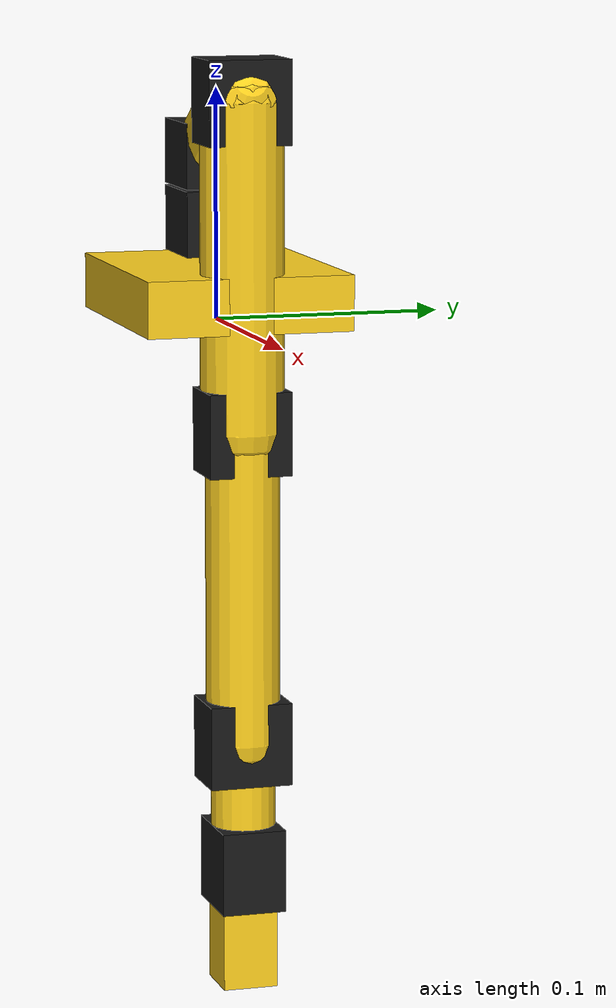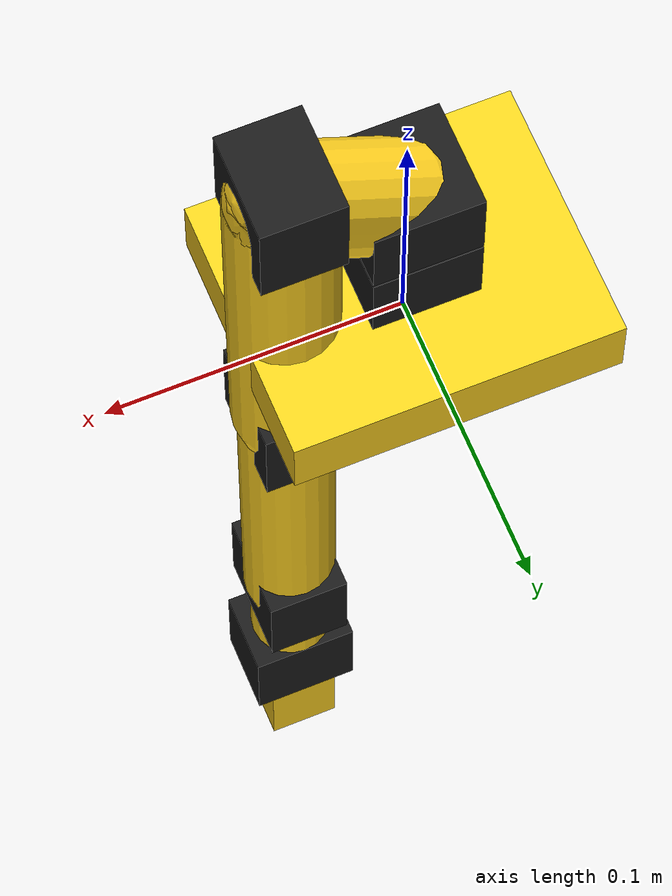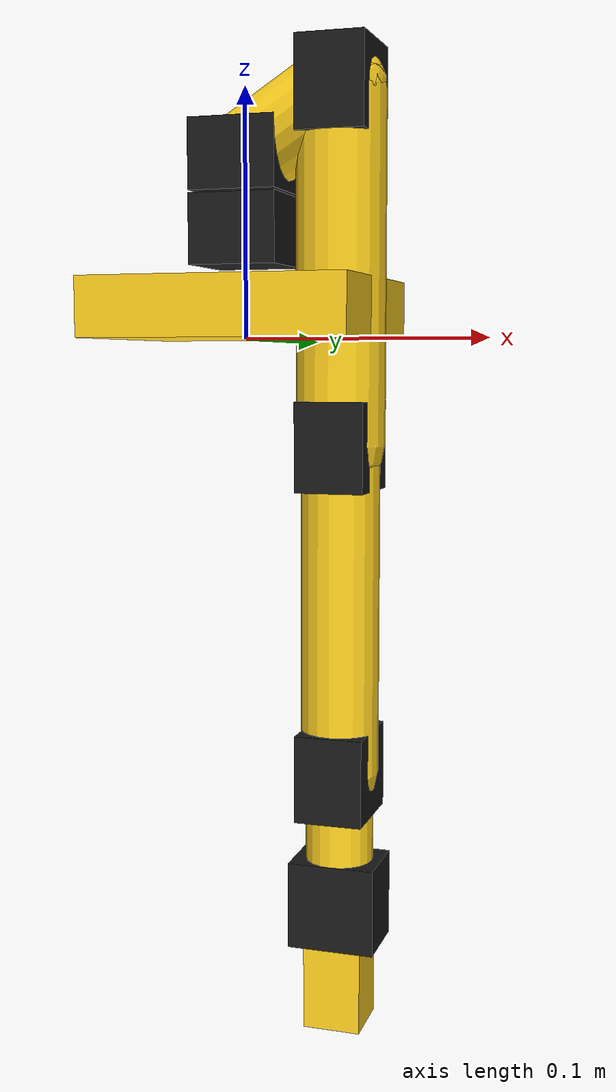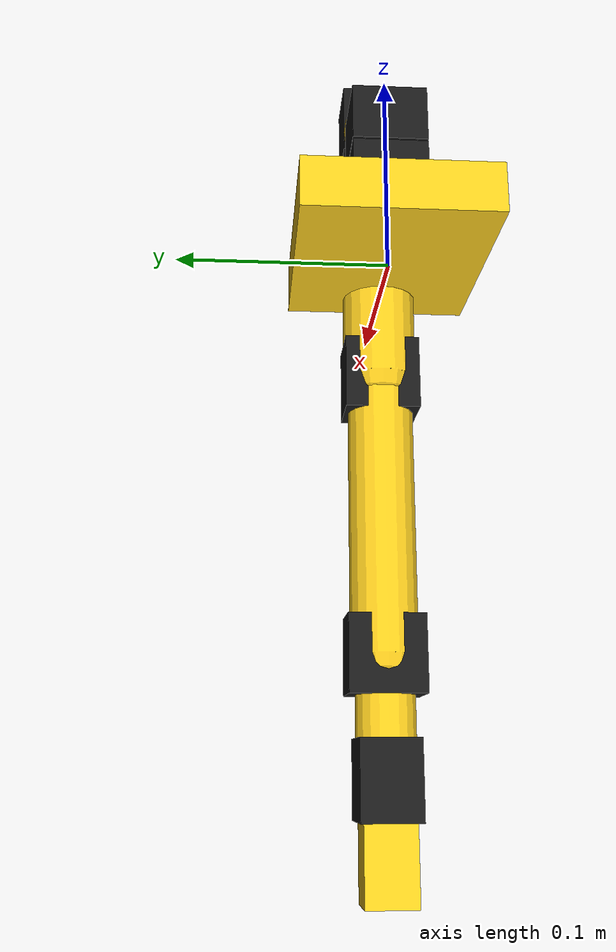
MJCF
<mujoco model="so101">
  <compiler angle="radian" autolimits="true"/>

  <default>
    <default class="so101">
      <joint damping="0.60" frictionloss="0.052" armature="0.028" limited="true"/>
      <position kp="120" kv="3" forcerange="-3.35 3.35"/>
      <geom contype="1" conaffinity="1" density="650" friction="0.8 0.1 0.1"/>
      <site size="0.006" rgba="0.1 0.7 1 1" group="4"/>
      <default class="so101/visual">
        <geom contype="0" conaffinity="0" group="2" rgba="1 0.82 0.12 1"/>
      </default>
      <default class="so101/collision">
        <geom group="3" rgba="1 0.82 0.12 0.35"/>
      </default>
      <default class="so101/servo">
        <geom type="box" size="0.018 0.018 0.014" rgba="0.1 0.1 0.1 1"/>
      </default>
    </default>
  </default>

  <worldbody>
    <body name="so101_base" pos="0 0 0" childclass="so101">
      <geom name="so101_base_plate" type="box" size="0.055 0.045 0.012" pos="0 0 0.012" class="so101/visual"/>
      <geom name="so101_base_collision" type="box" size="0.055 0.045 0.012" pos="0 0 0.012" class="so101/collision"/>
      <geom name="so101_base_servo" pos="0 0 0.043" class="so101/servo"/>

      <body name="so101_shoulder" pos="0 0 0.072">
        <joint name="shoulder_pan" type="hinge" axis="0 0 1" range="-1.91986 1.91986"/>
        <geom name="so101_shoulder_servo" pos="0 0 0" class="so101/servo"/>
        <geom name="so101_shoulder_link" type="capsule" fromto="0 0 0 0.04 0 0.025" size="0.018" class="so101/visual"/>
        <geom name="so101_shoulder_link_collision" type="capsule" fromto="0 0 0 0.04 0 0.025" size="0.018" class="so101/collision"/>

        <body name="so101_upper_arm" pos="0.04 0 0.025" quat="0.7071068 0 0.7071068 0">
          <joint name="shoulder_lift" type="hinge" axis="0 0 1" range="-1.74533 1.74533"/>
          <geom name="so101_upper_servo" pos="0 0 0" class="so101/servo"/>
          <geom name="so101_upper_arm" type="capsule" fromto="0 0 0 0.14 0 0" size="0.018" class="so101/visual"/>
          <geom name="so101_upper_arm_collision" type="capsule" fromto="0 0 0 0.14 0 0" size="0.018" class="so101/collision"/>

          <body name="so101_lower_arm" pos="0.14 0 0">
            <joint name="elbow_flex" type="hinge" axis="0 0 1" range="-1.69 1.69"/>
            <geom name="so101_elbow_servo" pos="0 0 0" class="so101/servo"/>
            <geom name="so101_lower_arm" type="capsule" fromto="0 0 0 0.135 0 0" size="0.016" class="so101/visual"/>
            <geom name="so101_lower_arm_collision" type="capsule" fromto="0 0 0 0.135 0 0" size="0.016" class="so101/collision"/>

            <body name="so101_wrist" pos="0.135 0 0">
              <joint name="wrist_flex" type="hinge" axis="0 0 1" range="-1.65806 1.65806"/>
              <geom name="so101_wrist_servo" pos="0 0 0" class="so101/servo"/>
              <geom name="so101_wrist_link" type="capsule" fromto="0 0 0 0.055 0 0" size="0.014" class="so101/visual"/>
              <geom name="so101_wrist_link_collision" type="capsule" fromto="0 0 0 0.055 0 0" size="0.014" class="so101/collision"/>

              <body name="so101_gripper_roll" pos="0.055 0 0" quat="0.7071068 0.7071068 0 0">
                <joint name="wrist_roll" type="hinge" axis="1 0 0" range="-2.74385 2.84121"/>
                <geom name="so101_roll_servo" pos="0 0 0" class="so101/servo"/>
                <camera name="handcam_rgb" pos="-0.025 0 0.045" quat="0.5 -0.5 -0.5 0.5" fovy="70"/>

                <body name="so101_gripper" pos="0.035 0 0">
                  <joint name="gripper" type="hinge" axis="0 0 1" range="-0.17453 1.74533"/>
                  <geom name="so101_gripper_palm" type="box" size="0.018 0.012 0.012" pos="0 0 0" class="so101/visual"/>
                  <geom name="so101_gripper_palm_collision" type="box" size="0.018 0.012 0.012" pos="0 0 0" class="so101/collision"/>
                  <geom name="so101_fixed_finger" type="box" size="0.008 0.006 0.035" pos="0.026 -0.018 0" class="so101/collision"/>
                  <geom name="so101_moving_finger" type="box" size="0.008 0.006 0.035" pos="0.026 0.018 0" class="so101/collision"/>
                  <site name="pinch" pos="0.035 0 0"/>
                </body>
              </body>
            </body>
          </body>
        </body>
      </body>
    </body>
  </worldbody>

  <actuator>
    <position name="shoulder_pan" joint="shoulder_pan" ctrlrange="-1.91986 1.91986"/>
    <position name="shoulder_lift" joint="shoulder_lift" ctrlrange="-1.74533 1.74533"/>
    <position name="elbow_flex" joint="elbow_flex" ctrlrange="-1.69 1.69"/>
    <position name="wrist_flex" joint="wrist_flex" ctrlrange="-1.65806 1.65806"/>
    <position name="wrist_roll" joint="wrist_roll" ctrlrange="-2.74385 2.84121"/>
    <position name="gripper" joint="gripper" ctrlrange="-0.17453 1.74533"/>
  </actuator>

  <sensor>
    <framepos name="so101/pinch_pos" objtype="site" objname="pinch"/>
    <framequat name="so101/pinch_quat" objtype="site" objname="pinch"/>
  </sensor>
</mujoco>
